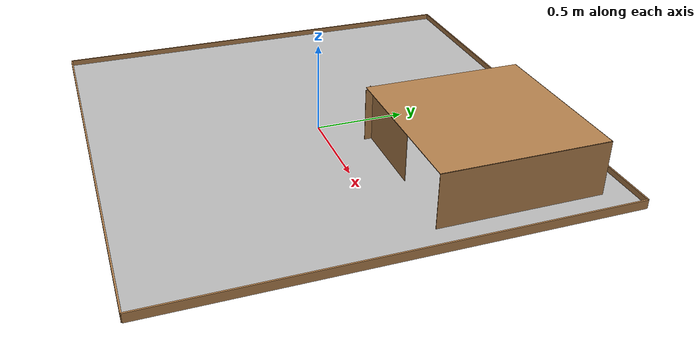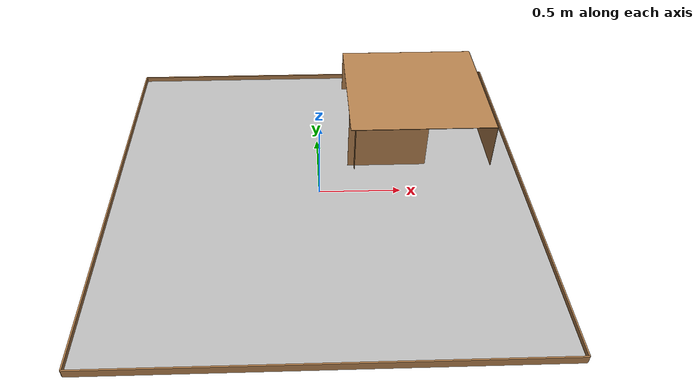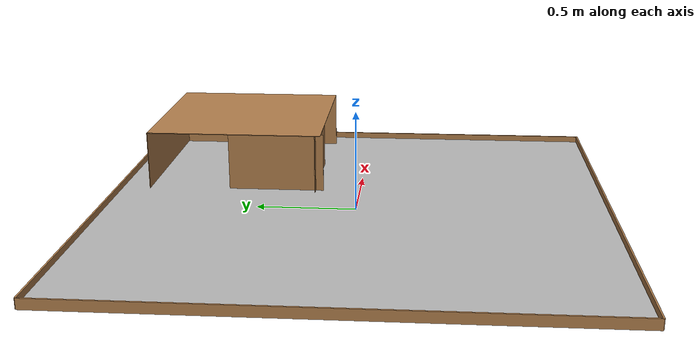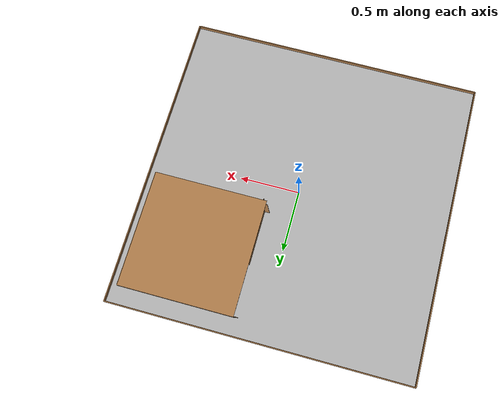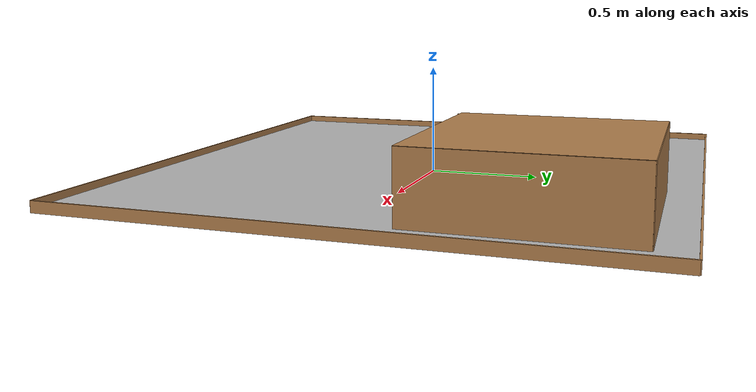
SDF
<?xml version="1.0"?>
<sdf version="1.6">
  <model name="Arena Test">
    <pose> 0 0 0.009 0 0 0 </pose>
    <static>true</static>
    <link name="arena">
      <!-- Sol de l'arène -->
      <collision name="arena_collision">
        <geometry>
          <box>
            <size>2.5 2.5 0.018</size>
          </box>
        </geometry>
      </collision>

      <visual name="arena_visual">
        <geometry>
          <box>
            <size>2.5 2.5 0.018</size>
          </box>
        </geometry>
	<material>
	  <script>
		<uri>model://arena/materials/scripts/</uri>
		<uri>model://arena/materials/textures/</uri>
	  	<name>TextureArene</name>
	  </script>
	</material>
      </visual>

      <!-- Tunnel top -->
      <collision name="tunnel_top_collision">
	<pose>0.65 0.65 0.309 0 0 0</pose>
        <geometry>
          <box>
            <size>0.9 0.9 0.003</size>
          </box>
        </geometry>
      </collision>

      <visual name="tunnel_top_visual">
	<pose>0.65 0.65 0.309 0 0 0</pose>
        <geometry>
          <box>
            <size>0.9 0.9 0.003</size>
          </box>
        </geometry>
	<material>
	  <script>
		<name>Gazebo/Wood</name> <!-- Texture bois pour la planche -->
	  </script>
	</material>
      </visual>

      <!-- Tunnel side -->
      <collision name="tunnel_side_collision1">
	<pose>0.65 1.1015 0.159 0 0 0</pose>
        <geometry>
          <box>
            <size>0.9 0.003 0.3</size>
          </box>
        </geometry>
      </collision>

      <visual name="tunnel_side_visual1">
	<pose>0.65 1.1015 0.159 0 0 0</pose>
        <geometry>
          <box>
            <size>0.9 0.003 0.3</size>
          </box>
        </geometry>
	<material>
	  <script>
		<name>Gazebo/Wood</name> <!-- Texture bois pour la planche -->
	  </script>
	</material>
      </visual>

      <!-- Tunnel side -->
      <collision name="tunnel_side_collision2">
	<pose>1.1015 0.65 0.159 0 0 0</pose>
        <geometry>
          <box>
            <size>0.003 0.9 0.3</size>
          </box>
        </geometry>
      </collision>

      <visual name="tunnel_side_visual2">
	<pose>1.1015 0.65 0.159 0 0 0</pose>
        <geometry>
          <box>
            <size>0.003 0.9 0.3</size>
          </box>
        </geometry>
	<material>
	  <script>
		<name>Gazebo/Wood</name> <!-- Texture bois pour la planche -->
	  </script>
	</material>
      </visual>

      <!-- Tunnel side -->
      <collision name="tunnel_side_collision3">
	<pose>0.435 0.2285 0.159 0 0 0</pose>
        <geometry>
          <box>
            <size>0.495 0.003 0.3</size>
          </box>
        </geometry>
      </collision>

      <visual name="tunnel_side_visual3">
	<pose>0.435 0.2285 0.159 0 0 0</pose>
        <geometry>
          <box>
            <size>0.495 0.003 0.3</size>
          </box>
        </geometry>
	<material>
	  <script>
		<name>Gazebo/Wood</name> <!-- Texture bois pour la planche -->
	  </script>
	</material>
      </visual>

      <!-- Tunnel side -->
      <collision name="tunnel_side_collision4">
	<pose>0.2285 0.435 0.159 0 0 0</pose>
        <geometry>
          <box>
            <size>0.003 0.495 0.3</size>
          </box>
        </geometry>
      </collision>
      <visual name="tunnel_side_visual4">
	<pose>0.2285 0.435 0.159 0 0 0</pose>
        <geometry>
          <box>
            <size>0.003 0.495 0.3</size>
          </box>
        </geometry>
	<material>
	  <script>
		<name>Gazebo/Wood</name> <!-- Texture bois pour la planche -->
	  </script>
	</material>
      </visual>

      <!-- Bordure de l'arène -->
      <collision name="border_collision1">
	<pose>-1.25 0 0.016 0 0 0</pose>
        <geometry>
          <box>
            <size>0.008 2.5 0.05</size>
          </box>
        </geometry>
      </collision>

      <visual name="border_visual1">
	<pose>-1.25 0 0.016 0 0 0</pose>
        <geometry>
          <box>
            <size>0.008 2.5 0.05</size>
          </box>
        </geometry>
	<material>
	  <script>
		<name>Gazebo/Wood</name> <!-- Texture bois pour la planche -->
	  </script>
	</material>
      </visual>

      <!-- Bordure de l'arène -->
      <collision name="border_collision2">
	<pose>1.25 0 0.016 0 0 0</pose>
        <geometry>
          <box>
            <size>0.008 2.5 0.05</size>
          </box>
        </geometry>
      </collision>

      <visual name="border_visual2">
	<pose>1.25 0 0.016 0 0 0</pose>
        <geometry>
          <box>
            <size>0.008 2.5 0.05</size>
          </box>
        </geometry>
	<material>
	  <script>
		<name>Gazebo/Wood</name> <!-- Texture bois pour la planche -->
	  </script>
	</material>
      </visual>

      <!-- Bordure de l'arène -->
      <collision name="border_collision3">
	<pose>0 -1.25 0.016 0 0 0</pose>
        <geometry>
          <box>
            <size>2.5 0.008 0.05</size>
          </box>
        </geometry>
      </collision>

      <visual name="border_visual3">
	<pose>0 -1.25 0.016 0 0 0</pose>
        <geometry>
          <box>
            <size>2.5 0.008 0.05</size>
          </box>
        </geometry>
	<material>
	  <script>
		<name>Gazebo/Wood</name> <!-- Texture bois pour la planche -->
	  </script>
	</material>
      </visual>

      <!-- Bordure de l'arène -->
      <collision name="border_collision4">
	<pose>0 1.25 0.016 0 0 0</pose>
        <geometry>
          <box>
            <size>2.5 0.008 0.05</size>
          </box>
        </geometry>
      </collision>

      <visual name="border_visual4">
	<pose>0 1.25 0.016 0 0 0</pose>
        <geometry>
          <box>
            <size>2.5 0.008 0.05</size>
          </box>
        </geometry>
	<material>
	  <script>
		<name>Gazebo/Wood</name> <!-- Texture bois pour la planche -->
	  </script>
	</material>
      </visual>
    </link>

  </model>
</sdf>
